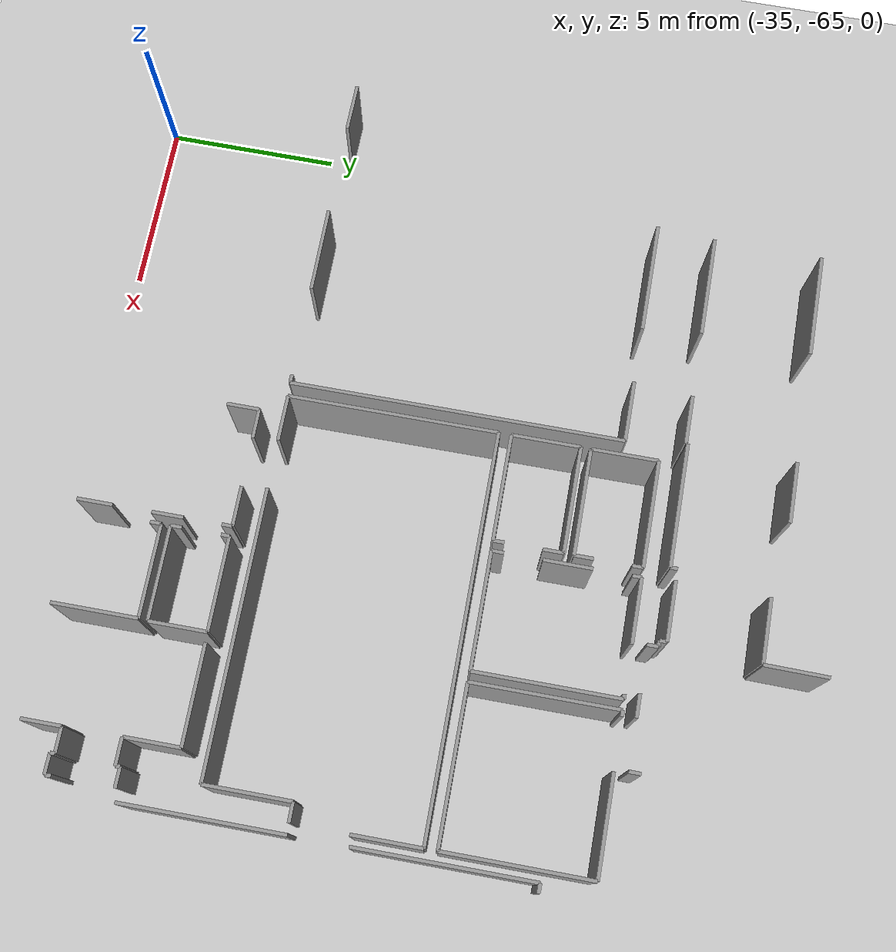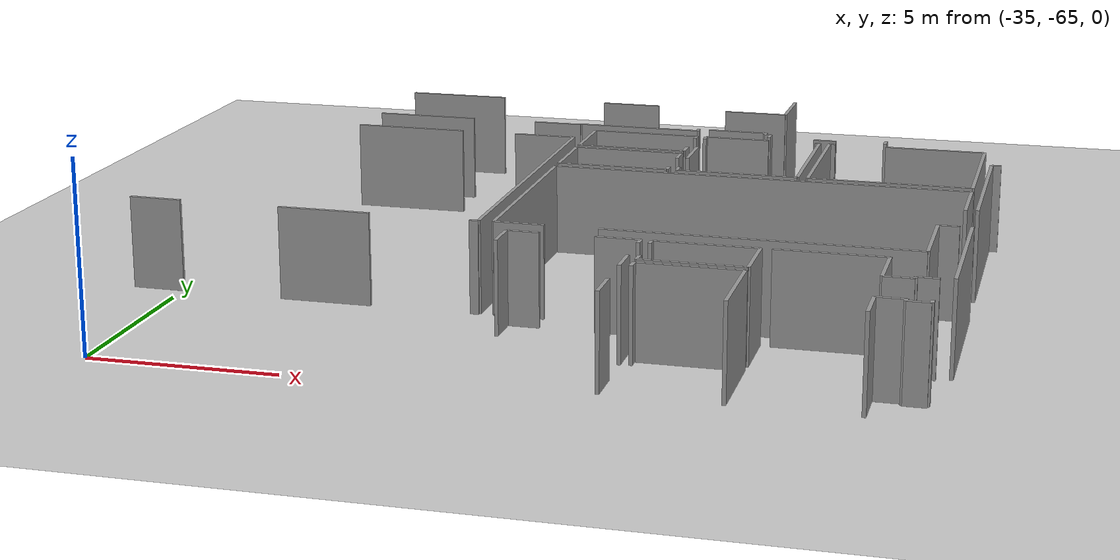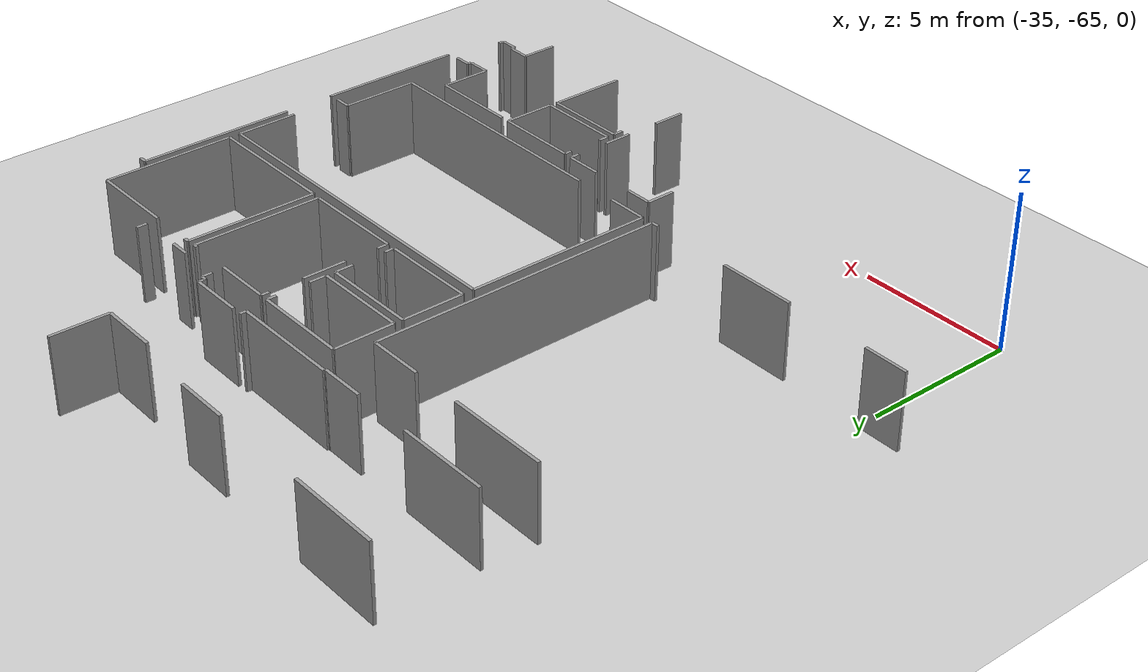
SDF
<sdf version="1.6">
 <world name="default">
  <model name="ground_plane">
   <static>1</static>
   <link name="link">
    <collision name="collision">
     <geometry><plane><normal>0 0 1</normal><size>100 100</size></plane></geometry>
     <surface><friction><ode><mu>100</mu><mu2>50</mu2></ode></friction></surface>
    </collision>
    <visual name="visual">
     <cast_shadows>0</cast_shadows>
     <geometry><plane><normal>0 0 1</normal><size>100 100</size></plane></geometry>
     <material>
      <script><uri>file://media/materials/scripts/gazebo.material</uri><name>Gazebo/Grey</name></script>
     </material>
    </visual>
   </link>
  </model>
  <model name="0510045926_A-40">
   <static>1</static>
   <link name="Wall_1348">
    <collision name="Wall_1348_Collision">
     <geometry><box><size>3.26101165735 0.1 2.5</size></box></geometry>
     <pose>1.63050582867 0 1.25 0 0 0</pose>
    </collision>
    <visual name="Wall_1348_Visual">
     <pose>1.63050582867 0 1.25 0 0 0</pose>
     <geometry><box><size>3.26101165735 0.1 2.5</size></box></geometry>
     <material>
      <script><uri>file://media/materials/scripts/gazebo.material</uri><name>Gazebo/Grey</name></script>
      <ambient>1 1 1 1</ambient>
     </material>
    </visual>
    <pose>100.48548384 -150.809973157 0 0 0 0.0</pose>
   </link>
   <link name="Wall_1349">
    <collision name="Wall_1349_Collision">
     <geometry><box><size>1.78547178312 0.1 2.5</size></box></geometry>
     <pose>0.892735891562 0 1.25 0 0 0</pose>
    </collision>
    <visual name="Wall_1349_Visual">
     <pose>0.892735891562 0 1.25 0 0 0</pose>
     <geometry><box><size>1.78547178312 0.1 2.5</size></box></geometry>
     <material>
      <script><uri>file://media/materials/scripts/gazebo.material</uri><name>Gazebo/Grey</name></script>
      <ambient>1 1 1 1</ambient>
     </material>
    </visual>
    <pose>105.385758616 -150.809973157 0 0 0 0.0</pose>
   </link>
   <link name="Wall_1350">
    <collision name="Wall_1350_Collision">
     <geometry><box><size>9.61804255535 0.1 2.5</size></box></geometry>
     <pose>4.80902127768 0 1.25 0 0 0</pose>
    </collision>
    <visual name="Wall_1350_Visual">
     <pose>4.80902127768 0 1.25 0 0 0</pose>
     <geometry><box><size>9.61804255535 0.1 2.5</size></box></geometry>
     <material>
      <script><uri>file://media/materials/scripts/gazebo.material</uri><name>Gazebo/Grey</name></script>
      <ambient>1 1 1 1</ambient>
     </material>
    </visual>
    <pose>107.171230399 -150.809973157 0 0 0 -1.57079632679</pose>
   </link>
   <link name="Wall_1351">
    <collision name="Wall_1351_Collision">
     <geometry><box><size>0.239112086964 0.1 2.5</size></box></geometry>
     <pose>0.119556043482 0 1.25 0 0 0</pose>
    </collision>
    <visual name="Wall_1351_Visual">
     <pose>0.119556043482 0 1.25 0 0 0</pose>
     <geometry><box><size>0.239112086964 0.1 2.5</size></box></geometry>
     <material>
      <script><uri>file://media/materials/scripts/gazebo.material</uri><name>Gazebo/Grey</name></script>
      <ambient>1 1 1 1</ambient>
     </material>
    </visual>
    <pose>107.171230399 -160.428015712 0 0 0 3.14159265359</pose>
   </link>
   <link name="Wall_1352">
    <collision name="Wall_1352_Collision">
     <geometry><box><size>2.50356954748 0.1 2.5</size></box></geometry>
     <pose>1.25178477374 0 1.25 0 0 0</pose>
    </collision>
    <visual name="Wall_1352_Visual">
     <pose>1.25178477374 0 1.25 0 0 0</pose>
     <geometry><box><size>2.50356954748 0.1 2.5</size></box></geometry>
     <material>
      <script><uri>file://media/materials/scripts/gazebo.material</uri><name>Gazebo/Grey</name></script>
      <ambient>1 1 1 1</ambient>
     </material>
    </visual>
    <pose>104.228527189 -160.428015712 0 0 0 3.14159265359</pose>
   </link>
   <link name="Wall_1353">
    <collision name="Wall_1353_Collision">
     <geometry><box><size>1.43381197946 0.1 2.5</size></box></geometry>
     <pose>0.716905989729 0 1.25 0 0 0</pose>
    </collision>
    <visual name="Wall_1353_Visual">
     <pose>0.716905989729 0 1.25 0 0 0</pose>
     <geometry><box><size>1.43381197946 0.1 2.5</size></box></geometry>
     <material>
      <script><uri>file://media/materials/scripts/gazebo.material</uri><name>Gazebo/Grey</name></script>
      <ambient>1 1 1 1</ambient>
     </material>
    </visual>
    <pose>98.9642537583 -160.428015712 0 0 0 3.12689824389</pose>
   </link>
   <link name="Wall_1459">
    <collision name="Wall_1459_Collision">
     <geometry><box><size>3.02266107385 0.1 2.5</size></box></geometry>
     <pose>1.51133053692 0 1.25 0 0 0</pose>
    </collision>
    <visual name="Wall_1459_Visual">
     <pose>1.51133053692 0 1.25 0 0 0</pose>
     <geometry><box><size>3.02266107385 0.1 2.5</size></box></geometry>
     <material>
      <script><uri>file://media/materials/scripts/gazebo.material</uri><name>Gazebo/Grey</name></script>
      <ambient>1 1 1 1</ambient>
     </material>
    </visual>
    <pose>100.614177925 -145.974933844 0 0 0 0.0</pose>
   </link>
   <link name="Wall_1460">
    <collision name="Wall_1460_Collision">
     <geometry><box><size>1.77531840363 0.1 2.5</size></box></geometry>
     <pose>0.887659201817 0 1.25 0 0 0</pose>
    </collision>
    <visual name="Wall_1460_Visual">
     <pose>0.887659201817 0 1.25 0 0 0</pose>
     <geometry><box><size>1.77531840363 0.1 2.5</size></box></geometry>
     <material>
      <script><uri>file://media/materials/scripts/gazebo.material</uri><name>Gazebo/Grey</name></script>
      <ambient>1 1 1 1</ambient>
     </material>
    </visual>
    <pose>106.926787788 -145.974933844 0 0 0 0.0</pose>
   </link>
   <link name="Wall_1463">
    <collision name="Wall_1463_Collision">
     <geometry><box><size>0.20839811401 0.1 2.5</size></box></geometry>
     <pose>0.104199057005 0 1.25 0 0 0</pose>
    </collision>
    <visual name="Wall_1463_Visual">
     <pose>0.104199057005 0 1.25 0 0 0</pose>
     <geometry><box><size>0.20839811401 0.1 2.5</size></box></geometry>
     <material>
      <script><uri>file://media/materials/scripts/gazebo.material</uri><name>Gazebo/Grey</name></script>
      <ambient>1 1 1 1</ambient>
     </material>
    </visual>
    <pose>110.543929231 -148.854432267 0 0 0 -1.57079632679</pose>
   </link>
   <link name="Wall_1464">
    <collision name="Wall_1464_Collision">
     <geometry><box><size>3.59505784253 0.1 2.5</size></box></geometry>
     <pose>1.79752892127 0 1.25 0 0 0</pose>
    </collision>
    <visual name="Wall_1464_Visual">
     <pose>1.79752892127 0 1.25 0 0 0</pose>
     <geometry><box><size>3.59505784253 0.1 2.5</size></box></geometry>
     <material>
      <script><uri>file://media/materials/scripts/gazebo.material</uri><name>Gazebo/Grey</name></script>
      <ambient>1 1 1 1</ambient>
     </material>
    </visual>
    <pose>110.543929231 -149.062830381 0 0 0 3.14159265359</pose>
   </link>
   <link name="Wall_1465">
    <collision name="Wall_1465_Collision">
     <geometry><box><size>0.055843587189 0.1 2.5</size></box></geometry>
     <pose>0.0279217935945 0 1.25 0 0 0</pose>
    </collision>
    <visual name="Wall_1465_Visual">
     <pose>0.0279217935945 0 1.25 0 0 0</pose>
     <geometry><box><size>0.055843587189 0.1 2.5</size></box></geometry>
     <material>
      <script><uri>file://media/materials/scripts/gazebo.material</uri><name>Gazebo/Grey</name></script>
      <ambient>1 1 1 1</ambient>
     </material>
    </visual>
    <pose>106.948871388 -149.062830381 0 0 0 -1.57079632679</pose>
   </link>
   <link name="Wall_1466">
    <collision name="Wall_1466_Collision">
     <geometry><box><size>1.43543402524 0.1 2.5</size></box></geometry>
     <pose>0.717717012622 0 1.25 0 0 0</pose>
    </collision>
    <visual name="Wall_1466_Visual">
     <pose>0.717717012622 0 1.25 0 0 0</pose>
     <geometry><box><size>1.43543402524 0.1 2.5</size></box></geometry>
     <material>
      <script><uri>file://media/materials/scripts/gazebo.material</uri><name>Gazebo/Grey</name></script>
      <ambient>1 1 1 1</ambient>
     </material>
    </visual>
    <pose>106.948871388 -149.118673969 0 0 0 3.14159265359</pose>
   </link>
   <link name="Wall_1467">
    <collision name="Wall_1467_Collision">
     <geometry><box><size>2.98230139038 0.1 2.5</size></box></geometry>
     <pose>1.49115069519 0 1.25 0 0 0</pose>
    </collision>
    <visual name="Wall_1467_Visual">
     <pose>1.49115069519 0 1.25 0 0 0</pose>
     <geometry><box><size>2.98230139038 0.1 2.5</size></box></geometry>
     <material>
      <script><uri>file://media/materials/scripts/gazebo.material</uri><name>Gazebo/Grey</name></script>
      <ambient>1 1 1 1</ambient>
     </material>
    </visual>
    <pose>103.579980074 -149.118673969 0 0 0 3.14159265359</pose>
   </link>
   <link name="Wall_1506">
    <collision name="Wall_1506_Collision">
     <geometry><box><size>1.9210193993 0.1 2.5</size></box></geometry>
     <pose>0.96050969965 0 1.25 0 0 0</pose>
    </collision>
    <visual name="Wall_1506_Visual">
     <pose>0.96050969965 0 1.25 0 0 0</pose>
     <geometry><box><size>1.9210193993 0.1 2.5</size></box></geometry>
     <material>
      <script><uri>file://media/materials/scripts/gazebo.material</uri><name>Gazebo/Grey</name></script>
      <ambient>1 1 1 1</ambient>
     </material>
    </visual>
    <pose>107.582949937 -151.715146938 0 0 0 1.57079632679</pose>
   </link>
   <link name="Wall_1507">
    <collision name="Wall_1507_Collision">
     <geometry><box><size>3.09754224758 0.1 2.5</size></box></geometry>
     <pose>1.54877112379 0 1.25 0 0 0</pose>
    </collision>
    <visual name="Wall_1507_Visual">
     <pose>1.54877112379 0 1.25 0 0 0</pose>
     <geometry><box><size>3.09754224758 0.1 2.5</size></box></geometry>
     <material>
      <script><uri>file://media/materials/scripts/gazebo.material</uri><name>Gazebo/Grey</name></script>
      <ambient>1 1 1 1</ambient>
     </material>
    </visual>
    <pose>107.582949937 -149.794127539 0 0 0 0.0</pose>
   </link>
   <link name="Wall_1508">
    <collision name="Wall_1508_Collision">
     <geometry><box><size>0.300032363897 0.1 2.5</size></box></geometry>
     <pose>0.150016181949 0 1.25 0 0 0</pose>
    </collision>
    <visual name="Wall_1508_Visual">
     <pose>0.150016181949 0 1.25 0 0 0</pose>
     <geometry><box><size>0.300032363897 0.1 2.5</size></box></geometry>
     <material>
      <script><uri>file://media/materials/scripts/gazebo.material</uri><name>Gazebo/Grey</name></script>
      <ambient>1 1 1 1</ambient>
     </material>
    </visual>
    <pose>110.680492185 -149.794127539 0 0 0 -1.57079632679</pose>
   </link>
   <link name="Wall_1509">
    <collision name="Wall_1509_Collision">
     <geometry><box><size>0.550313168299 0.1 2.5</size></box></geometry>
     <pose>0.275156584149 0 1.25 0 0 0</pose>
    </collision>
    <visual name="Wall_1509_Visual">
     <pose>0.275156584149 0 1.25 0 0 0</pose>
     <geometry><box><size>0.550313168299 0.1 2.5</size></box></geometry>
     <material>
      <script><uri>file://media/materials/scripts/gazebo.material</uri><name>Gazebo/Grey</name></script>
      <ambient>1 1 1 1</ambient>
     </material>
    </visual>
    <pose>110.680492185 -151.16483377 0 0 0 -1.57079632679</pose>
   </link>
   <link name="Wall_1510">
    <collision name="Wall_1510_Collision">
     <geometry><box><size>3.09754224758 0.1 2.5</size></box></geometry>
     <pose>1.54877112379 0 1.25 0 0 0</pose>
    </collision>
    <visual name="Wall_1510_Visual">
     <pose>1.54877112379 0 1.25 0 0 0</pose>
     <geometry><box><size>3.09754224758 0.1 2.5</size></box></geometry>
     <material>
      <script><uri>file://media/materials/scripts/gazebo.material</uri><name>Gazebo/Grey</name></script>
      <ambient>1 1 1 1</ambient>
     </material>
    </visual>
    <pose>110.680492185 -151.715146938 0 0 0 3.14159265359</pose>
   </link>
   <link name="Wall_1511">
    <collision name="Wall_1511_Collision">
     <geometry><box><size>1.9827011797 0.1 2.5</size></box></geometry>
     <pose>0.991350589848 0 1.25 0 0 0</pose>
    </collision>
    <visual name="Wall_1511_Visual">
     <pose>0.991350589848 0 1.25 0 0 0</pose>
     <geometry><box><size>1.9827011797 0.1 2.5</size></box></geometry>
     <material>
      <script><uri>file://media/materials/scripts/gazebo.material</uri><name>Gazebo/Grey</name></script>
      <ambient>1 1 1 1</ambient>
     </material>
    </visual>
    <pose>107.57406573 -153.982650413 0 0 0 1.57079632679</pose>
   </link>
   <link name="Wall_1512">
    <collision name="Wall_1512_Collision">
     <geometry><box><size>3.09551157168 0.1 2.5</size></box></geometry>
     <pose>1.54775578584 0 1.25 0 0 0</pose>
    </collision>
    <visual name="Wall_1512_Visual">
     <pose>1.54775578584 0 1.25 0 0 0</pose>
     <geometry><box><size>3.09551157168 0.1 2.5</size></box></geometry>
     <material>
      <script><uri>file://media/materials/scripts/gazebo.material</uri><name>Gazebo/Grey</name></script>
      <ambient>1 1 1 1</ambient>
     </material>
    </visual>
    <pose>107.57406573 -151.999949233 0 0 0 0.0</pose>
   </link>
   <link name="Wall_1513">
    <collision name="Wall_1513_Collision">
     <geometry><box><size>0.587373003433 0.1 2.5</size></box></geometry>
     <pose>0.293686501717 0 1.25 0 0 0</pose>
    </collision>
    <visual name="Wall_1513_Visual">
     <pose>0.293686501717 0 1.25 0 0 0</pose>
     <geometry><box><size>0.587373003433 0.1 2.5</size></box></geometry>
     <material>
      <script><uri>file://media/materials/scripts/gazebo.material</uri><name>Gazebo/Grey</name></script>
      <ambient>1 1 1 1</ambient>
     </material>
    </visual>
    <pose>110.669577302 -151.999949233 0 0 0 -1.57079632679</pose>
   </link>
   <link name="Wall_1514">
    <collision name="Wall_1514_Collision">
     <geometry><box><size>0.317293109028 0.1 2.5</size></box></geometry>
     <pose>0.158646554514 0 1.25 0 0 0</pose>
    </collision>
    <visual name="Wall_1514_Visual">
     <pose>0.158646554514 0 1.25 0 0 0</pose>
     <geometry><box><size>0.317293109028 0.1 2.5</size></box></geometry>
     <material>
      <script><uri>file://media/materials/scripts/gazebo.material</uri><name>Gazebo/Grey</name></script>
      <ambient>1 1 1 1</ambient>
     </material>
    </visual>
    <pose>110.669577302 -153.657996104 0 0 0 -1.57079632679</pose>
   </link>
   <link name="Wall_1515">
    <collision name="Wall_1515_Collision">
     <geometry><box><size>3.09552032422 0.1 2.5</size></box></geometry>
     <pose>1.54776016211 0 1.25 0 0 0</pose>
    </collision>
    <visual name="Wall_1515_Visual">
     <pose>1.54776016211 0 1.25 0 0 0</pose>
     <geometry><box><size>3.09552032422 0.1 2.5</size></box></geometry>
     <material>
      <script><uri>file://media/materials/scripts/gazebo.material</uri><name>Gazebo/Grey</name></script>
      <ambient>1 1 1 1</ambient>
     </material>
    </visual>
    <pose>110.669577302 -153.975289213 0 0 0 -3.13921463429</pose>
   </link>
   <link name="Wall_1516">
    <collision name="Wall_1516_Collision">
     <geometry><box><size>0.353337606214 0.1 2.5</size></box></geometry>
     <pose>0.176668803107 0 1.25 0 0 0</pose>
    </collision>
    <visual name="Wall_1516_Visual">
     <pose>0.176668803107 0 1.25 0 0 0</pose>
     <geometry><box><size>0.353337606214 0.1 2.5</size></box></geometry>
     <material>
      <script><uri>file://media/materials/scripts/gazebo.material</uri><name>Gazebo/Grey</name></script>
      <ambient>1 1 1 1</ambient>
     </material>
    </visual>
    <pose>110.957679445 -153.970974026 0 0 0 1.57079632679</pose>
   </link>
   <link name="Wall_1517">
    <collision name="Wall_1517_Collision">
     <geometry><box><size>1.39812035562 0.1 2.5</size></box></geometry>
     <pose>0.699060177811 0 1.25 0 0 0</pose>
    </collision>
    <visual name="Wall_1517_Visual">
     <pose>0.699060177811 0 1.25 0 0 0</pose>
     <geometry><box><size>1.39812035562 0.1 2.5</size></box></geometry>
     <material>
      <script><uri>file://media/materials/scripts/gazebo.material</uri><name>Gazebo/Grey</name></script>
      <ambient>1 1 1 1</ambient>
     </material>
    </visual>
    <pose>110.957679445 -152.534524663 0 0 0 1.57079632679</pose>
   </link>
   <link name="Wall_1518">
    <collision name="Wall_1518_Collision">
     <geometry><box><size>0.255611328633 0.1 2.5</size></box></geometry>
     <pose>0.127805664317 0 1.25 0 0 0</pose>
    </collision>
    <visual name="Wall_1518_Visual">
     <pose>0.127805664317 0 1.25 0 0 0</pose>
     <geometry><box><size>0.255611328633 0.1 2.5</size></box></geometry>
     <material>
      <script><uri>file://media/materials/scripts/gazebo.material</uri><name>Gazebo/Grey</name></script>
      <ambient>1 1 1 1</ambient>
     </material>
    </visual>
    <pose>110.957679445 -150.05100804 0 0 0 1.57079632679</pose>
   </link>
   <link name="Wall_1519">
    <collision name="Wall_1519_Collision">
     <geometry><box><size>1.87050633634 0.1 2.5</size></box></geometry>
     <pose>0.935253168172 0 1.25 0 0 0</pose>
    </collision>
    <visual name="Wall_1519_Visual">
     <pose>0.935253168172 0 1.25 0 0 0</pose>
     <geometry><box><size>1.87050633634 0.1 2.5</size></box></geometry>
     <material>
      <script><uri>file://media/materials/scripts/gazebo.material</uri><name>Gazebo/Grey</name></script>
      <ambient>1 1 1 1</ambient>
     </material>
    </visual>
    <pose>110.957679445 -149.795396712 0 0 0 0.0</pose>
   </link>
   <link name="Wall_1520">
    <collision name="Wall_1520_Collision">
     <geometry><box><size>0.131993933356 0.1 2.5</size></box></geometry>
     <pose>0.0659969666779 0 1.25 0 0 0</pose>
    </collision>
    <visual name="Wall_1520_Visual">
     <pose>0.0659969666779 0 1.25 0 0 0</pose>
     <geometry><box><size>0.131993933356 0.1 2.5</size></box></geometry>
     <material>
      <script><uri>file://media/materials/scripts/gazebo.material</uri><name>Gazebo/Grey</name></script>
      <ambient>1 1 1 1</ambient>
     </material>
    </visual>
    <pose>114.19533833 -149.795396712 0 0 0 0.0</pose>
   </link>
   <link name="Wall_1521">
    <collision name="Wall_1521_Collision">
     <geometry><box><size>4.16720077673 0.1 2.5</size></box></geometry>
     <pose>2.08360038837 0 1.25 0 0 0</pose>
    </collision>
    <visual name="Wall_1521_Visual">
     <pose>2.08360038837 0 1.25 0 0 0</pose>
     <geometry><box><size>4.16720077673 0.1 2.5</size></box></geometry>
     <material>
      <script><uri>file://media/materials/scripts/gazebo.material</uri><name>Gazebo/Grey</name></script>
      <ambient>1 1 1 1</ambient>
     </material>
    </visual>
    <pose>114.327332263 -149.795396712 0 0 0 -1.57079632679</pose>
   </link>
   <link name="Wall_1522">
    <collision name="Wall_1522_Collision">
     <geometry><box><size>3.36966322938 0.1 2.5</size></box></geometry>
     <pose>1.68483161469 0 1.25 0 0 0</pose>
    </collision>
    <visual name="Wall_1522_Visual">
     <pose>1.68483161469 0 1.25 0 0 0</pose>
     <geometry><box><size>3.36966322938 0.1 2.5</size></box></geometry>
     <material>
      <script><uri>file://media/materials/scripts/gazebo.material</uri><name>Gazebo/Grey</name></script>
      <ambient>1 1 1 1</ambient>
     </material>
    </visual>
    <pose>114.327332263 -153.962597488 0 0 0 -3.139106783</pose>
   </link>
   <link name="Wall_1523">
    <collision name="Wall_1523_Collision">
     <geometry><box><size>4.20019926007 0.1 2.5</size></box></geometry>
     <pose>2.10009963004 0 1.25 0 0 0</pose>
    </collision>
    <visual name="Wall_1523_Visual">
     <pose>2.10009963004 0 1.25 0 0 0</pose>
     <geometry><box><size>4.20019926007 0.1 2.5</size></box></geometry>
     <material>
      <script><uri>file://media/materials/scripts/gazebo.material</uri><name>Gazebo/Grey</name></script>
      <ambient>1 1 1 1</ambient>
     </material>
    </visual>
    <pose>114.617972751 -153.980619737 0 0 0 1.57079632679</pose>
   </link>
   <link name="Wall_1524">
    <collision name="Wall_1524_Collision">
     <geometry><box><size>0.172353616824 0.1 2.5</size></box></geometry>
     <pose>0.0861768084121 0 1.25 0 0 0</pose>
    </collision>
    <visual name="Wall_1524_Visual">
     <pose>0.0861768084121 0 1.25 0 0 0</pose>
     <geometry><box><size>0.172353616824 0.1 2.5</size></box></geometry>
     <material>
      <script><uri>file://media/materials/scripts/gazebo.material</uri><name>Gazebo/Grey</name></script>
      <ambient>1 1 1 1</ambient>
     </material>
    </visual>
    <pose>114.617972751 -149.780420477 0 0 0 0.0</pose>
   </link>
   <link name="Wall_1525">
    <collision name="Wall_1525_Collision">
     <geometry><box><size>2.83126987048 0.1 2.5</size></box></geometry>
     <pose>1.41563493524 0 1.25 0 0 0</pose>
    </collision>
    <visual name="Wall_1525_Visual">
     <pose>1.41563493524 0 1.25 0 0 0</pose>
     <geometry><box><size>2.83126987048 0.1 2.5</size></box></geometry>
     <material>
      <script><uri>file://media/materials/scripts/gazebo.material</uri><name>Gazebo/Grey</name></script>
      <ambient>1 1 1 1</ambient>
     </material>
    </visual>
    <pose>116.252920683 -149.780420477 0 0 0 0.0</pose>
   </link>
   <link name="Wall_1526">
    <collision name="Wall_1526_Collision">
     <geometry><box><size>4.19893008764 0.1 2.5</size></box></geometry>
     <pose>2.09946504382 0 1.25 0 0 0</pose>
    </collision>
    <visual name="Wall_1526_Visual">
     <pose>2.09946504382 0 1.25 0 0 0</pose>
     <geometry><box><size>4.19893008764 0.1 2.5</size></box></geometry>
     <material>
      <script><uri>file://media/materials/scripts/gazebo.material</uri><name>Gazebo/Grey</name></script>
      <ambient>1 1 1 1</ambient>
     </material>
    </visual>
    <pose>119.084190554 -149.780420477 0 0 0 -1.57079632679</pose>
   </link>
   <link name="Wall_1527">
    <collision name="Wall_1527_Collision">
     <geometry><box><size>4.46621798301 0.1 2.5</size></box></geometry>
     <pose>2.23310899151 0 1.25 0 0 0</pose>
    </collision>
    <visual name="Wall_1527_Visual">
     <pose>2.23310899151 0 1.25 0 0 0</pose>
     <geometry><box><size>4.46621798301 0.1 2.5</size></box></geometry>
     <material>
      <script><uri>file://media/materials/scripts/gazebo.material</uri><name>Gazebo/Grey</name></script>
      <ambient>1 1 1 1</ambient>
     </material>
    </visual>
    <pose>119.084190554 -153.979350564 0 0 0 -3.14130848196</pose>
   </link>
   <link name="Wall_1542">
    <collision name="Wall_1542_Collision">
     <geometry><box><size>0.339376709417 0.1 2.5</size></box></geometry>
     <pose>0.169688354708 0 1.25 0 0 0</pose>
    </collision>
    <visual name="Wall_1542_Visual">
     <pose>0.169688354708 0 1.25 0 0 0</pose>
     <geometry><box><size>0.339376709417 0.1 2.5</size></box></geometry>
     <material>
      <script><uri>file://media/materials/scripts/gazebo.material</uri><name>Gazebo/Grey</name></script>
      <ambient>1 1 1 1</ambient>
     </material>
    </visual>
    <pose>116.184385372 -149.052677002 0 0 0 -1.57079632679</pose>
   </link>
   <link name="Wall_1543">
    <collision name="Wall_1543_Collision">
     <geometry><box><size>0.660223501266 0.1 2.5</size></box></geometry>
     <pose>0.330111750633 0 1.25 0 0 0</pose>
    </collision>
    <visual name="Wall_1543_Visual">
     <pose>0.330111750633 0 1.25 0 0 0</pose>
     <geometry><box><size>0.660223501266 0.1 2.5</size></box></geometry>
     <material>
      <script><uri>file://media/materials/scripts/gazebo.material</uri><name>Gazebo/Grey</name></script>
      <ambient>1 1 1 1</ambient>
     </material>
    </visual>
    <pose>114.760627733 -149.392053711 0 0 0 3.14159265359</pose>
   </link>
   <link name="Wall_1544">
    <collision name="Wall_1544_Collision">
     <geometry><box><size>0.314754764156 0.1 2.5</size></box></geometry>
     <pose>0.157377382078 0 1.25 0 0 0</pose>
    </collision>
    <visual name="Wall_1544_Visual">
     <pose>0.157377382078 0 1.25 0 0 0</pose>
     <geometry><box><size>0.314754764156 0.1 2.5</size></box></geometry>
     <material>
      <script><uri>file://media/materials/scripts/gazebo.material</uri><name>Gazebo/Grey</name></script>
      <ambient>1 1 1 1</ambient>
     </material>
    </visual>
    <pose>112.76472716 -149.392053711 0 0 0 1.57079632679</pose>
   </link>
   <link name="Wall_1545">
    <collision name="Wall_1545_Collision">
     <geometry><box><size>0.17184594785 0.1 2.5</size></box></geometry>
     <pose>0.0859229739248 0 1.25 0 0 0</pose>
    </collision>
    <visual name="Wall_1545_Visual">
     <pose>0.0859229739248 0 1.25 0 0 0</pose>
     <geometry><box><size>0.17184594785 0.1 2.5</size></box></geometry>
     <material>
      <script><uri>file://media/materials/scripts/gazebo.material</uri><name>Gazebo/Grey</name></script>
      <ambient>1 1 1 1</ambient>
     </material>
    </visual>
    <pose>112.76472716 -149.077298947 0 0 0 3.14159265359</pose>
   </link>
   <link name="Wall_1546">
    <collision name="Wall_1546_Collision">
     <geometry><box><size>0.208651948497 0.1 2.5</size></box></geometry>
     <pose>0.104325974248 0 1.25 0 0 0</pose>
    </collision>
    <visual name="Wall_1546_Visual">
     <pose>0.104325974248 0 1.25 0 0 0</pose>
     <geometry><box><size>0.208651948497 0.1 2.5</size></box></geometry>
     <material>
      <script><uri>file://media/materials/scripts/gazebo.material</uri><name>Gazebo/Grey</name></script>
      <ambient>1 1 1 1</ambient>
     </material>
    </visual>
    <pose>112.592881212 -149.077298947 0 0 0 1.57079632679</pose>
   </link>
   <link name="Wall_1547">
    <collision name="Wall_1547_Collision">
     <geometry><box><size>1.72226699581 0.1 2.5</size></box></geometry>
     <pose>0.861133497903 0 1.25 0 0 0</pose>
    </collision>
    <visual name="Wall_1547_Visual">
     <pose>0.861133497903 0 1.25 0 0 0</pose>
     <geometry><box><size>1.72226699581 0.1 2.5</size></box></geometry>
     <material>
      <script><uri>file://media/materials/scripts/gazebo.material</uri><name>Gazebo/Grey</name></script>
      <ambient>1 1 1 1</ambient>
     </material>
    </visual>
    <pose>112.592881212 -148.868646999 0 0 0 3.14159265359</pose>
   </link>
   <link name="Wall_1548">
    <collision name="Wall_1548_Collision">
     <geometry><box><size>1.87228317775 0.1 2.5</size></box></geometry>
     <pose>0.936141588877 0 1.25 0 0 0</pose>
    </collision>
    <visual name="Wall_1548_Visual">
     <pose>0.936141588877 0 1.25 0 0 0</pose>
     <geometry><box><size>1.87228317775 0.1 2.5</size></box></geometry>
     <material>
      <script><uri>file://media/materials/scripts/gazebo.material</uri><name>Gazebo/Grey</name></script>
      <ambient>1 1 1 1</ambient>
     </material>
    </visual>
    <pose>110.870614216 -146.245013739 0 0 0 0.0</pose>
   </link>
   <link name="Wall_1549">
    <collision name="Wall_1549_Collision">
     <geometry><box><size>1.83153410168 0.1 2.5</size></box></geometry>
     <pose>0.915767050839 0 1.25 0 0 0</pose>
    </collision>
    <visual name="Wall_1549_Visual">
     <pose>0.915767050839 0 1.25 0 0 0</pose>
     <geometry><box><size>1.83153410168 0.1 2.5</size></box></geometry>
     <material>
      <script><uri>file://media/materials/scripts/gazebo.material</uri><name>Gazebo/Grey</name></script>
      <ambient>1 1 1 1</ambient>
     </material>
    </visual>
    <pose>112.742897394 -146.245013739 0 0 0 1.55943160473</pose>
   </link>
   <link name="Wall_1550">
    <collision name="Wall_1550_Collision">
     <geometry><box><size>2.70435262687 0.1 2.5</size></box></geometry>
     <pose>1.35217631343 0 1.25 0 0 0</pose>
    </collision>
    <visual name="Wall_1550_Visual">
     <pose>1.35217631343 0 1.25 0 0 0</pose>
     <geometry><box><size>2.70435262687 0.1 2.5</size></box></geometry>
     <material>
      <script><uri>file://media/materials/scripts/gazebo.material</uri><name>Gazebo/Grey</name></script>
      <ambient>1 1 1 1</ambient>
     </material>
    </visual>
    <pose>111.857522702 -161.142305959 0 0 0 0.0</pose>
   </link>
   <link name="Wall_1551">
    <collision name="Wall_1551_Collision">
     <geometry><box><size>1.66997709144 0.1 2.5</size></box></geometry>
     <pose>0.834988545719 0 1.25 0 0 0</pose>
    </collision>
    <visual name="Wall_1551_Visual">
     <pose>0.834988545719 0 1.25 0 0 0</pose>
     <geometry><box><size>1.66997709144 0.1 2.5</size></box></geometry>
     <material>
      <script><uri>file://media/materials/scripts/gazebo.material</uri><name>Gazebo/Grey</name></script>
      <ambient>1 1 1 1</ambient>
     </material>
    </visual>
    <pose>114.561875329 -161.142305959 0 0 0 -1.57079632679</pose>
   </link>
   <link name="Wall_1552">
    <collision name="Wall_1552_Collision">
     <geometry><box><size>2.7096831511 0.1 2.5</size></box></geometry>
     <pose>1.35484157555 0 1.25 0 0 0</pose>
    </collision>
    <visual name="Wall_1552_Visual">
     <pose>1.35484157555 0 1.25 0 0 0</pose>
     <geometry><box><size>2.7096831511 0.1 2.5</size></box></geometry>
     <material>
      <script><uri>file://media/materials/scripts/gazebo.material</uri><name>Gazebo/Grey</name></script>
      <ambient>1 1 1 1</ambient>
     </material>
    </visual>
    <pose>114.561875329 -162.812283051 0 0 0 3.14159265359</pose>
   </link>
   <link name="Wall_1553">
    <collision name="Wall_1553_Collision">
     <geometry><box><size>0.322877467747 0.1 2.5</size></box></geometry>
     <pose>0.161438733874 0 1.25 0 0 0</pose>
    </collision>
    <visual name="Wall_1553_Visual">
     <pose>0.161438733874 0 1.25 0 0 0</pose>
     <geometry><box><size>0.322877467747 0.1 2.5</size></box></geometry>
     <material>
      <script><uri>file://media/materials/scripts/gazebo.material</uri><name>Gazebo/Grey</name></script>
      <ambient>1 1 1 1</ambient>
     </material>
    </visual>
    <pose>111.852192178 -162.812283051 0 0 0 1.57079632679</pose>
   </link>
   <link name="Wall_1554">
    <collision name="Wall_1554_Collision">
     <geometry><box><size>0.236887558805 0.1 2.5</size></box></geometry>
     <pose>0.118443779403 0 1.25 0 0 0</pose>
    </collision>
    <visual name="Wall_1554_Visual">
     <pose>0.118443779403 0 1.25 0 0 0</pose>
     <geometry><box><size>0.236887558805 0.1 2.5</size></box></geometry>
     <material>
      <script><uri>file://media/materials/scripts/gazebo.material</uri><name>Gazebo/Grey</name></script>
      <ambient>1 1 1 1</ambient>
     </material>
    </visual>
    <pose>111.852192178 -161.379133536 0 0 0 1.548292088</pose>
   </link>
   <link name="Wall_1556">
    <collision name="Wall_1556_Collision">
     <geometry><box><size>0.319323784926 0.1 2.5</size></box></geometry>
     <pose>0.159661892463 0 1.25 0 0 0</pose>
    </collision>
    <visual name="Wall_1556_Visual">
     <pose>0.159661892463 0 1.25 0 0 0</pose>
     <geometry><box><size>0.319323784926 0.1 2.5</size></box></geometry>
     <material>
      <script><uri>file://media/materials/scripts/gazebo.material</uri><name>Gazebo/Grey</name></script>
      <ambient>1 1 1 1</ambient>
     </material>
    </visual>
    <pose>111.850415337 -163.391533351 0 0 0 1.57079632679</pose>
   </link>
   <link name="Wall_1557">
    <collision name="Wall_1557_Collision">
     <geometry><box><size>2.68683804725 0.1 2.5</size></box></geometry>
     <pose>1.34341902363 0 1.25 0 0 0</pose>
    </collision>
    <visual name="Wall_1557_Visual">
     <pose>1.34341902363 0 1.25 0 0 0</pose>
     <geometry><box><size>2.68683804725 0.1 2.5</size></box></geometry>
     <material>
      <script><uri>file://media/materials/scripts/gazebo.material</uri><name>Gazebo/Grey</name></script>
      <ambient>1 1 1 1</ambient>
     </material>
    </visual>
    <pose>111.850415337 -163.072209566 0 0 0 0.0</pose>
   </link>
   <link name="Wall_1558">
    <collision name="Wall_1558_Collision">
     <geometry><box><size>2.46828655375 0.1 2.5</size></box></geometry>
     <pose>1.23414327688 0 1.25 0 0 0</pose>
    </collision>
    <visual name="Wall_1558_Visual">
     <pose>1.23414327688 0 1.25 0 0 0</pose>
     <geometry><box><size>2.46828655375 0.1 2.5</size></box></geometry>
     <material>
      <script><uri>file://media/materials/scripts/gazebo.material</uri><name>Gazebo/Grey</name></script>
      <ambient>1 1 1 1</ambient>
     </material>
    </visual>
    <pose>114.537253384 -163.072209566 0 0 0 -1.57079632679</pose>
   </link>
   <link name="Wall_1561">
    <collision name="Wall_1561_Collision">
     <geometry><box><size>0.938172264775 0.1 2.5</size></box></geometry>
     <pose>0.469086132387 0 1.25 0 0 0</pose>
    </collision>
    <visual name="Wall_1561_Visual">
     <pose>0.469086132387 0 1.25 0 0 0</pose>
     <geometry><box><size>0.938172264775 0.1 2.5</size></box></geometry>
     <material>
      <script><uri>file://media/materials/scripts/gazebo.material</uri><name>Gazebo/Grey</name></script>
      <ambient>1 1 1 1</ambient>
     </material>
    </visual>
    <pose>108.110671836 -162.061440638 0 0 0 1.57079632679</pose>
   </link>
   <link name="Wall_1562">
    <collision name="Wall_1562_Collision">
     <geometry><box><size>0.862275753095 0.1 2.5</size></box></geometry>
     <pose>0.431137876548 0 1.25 0 0 0</pose>
    </collision>
    <visual name="Wall_1562_Visual">
     <pose>0.431137876548 0 1.25 0 0 0</pose>
     <geometry><box><size>0.862275753095 0.1 2.5</size></box></geometry>
     <material>
      <script><uri>file://media/materials/scripts/gazebo.material</uri><name>Gazebo/Grey</name></script>
      <ambient>1 1 1 1</ambient>
     </material>
    </visual>
    <pose>108.110671836 -161.123268373 0 0 0 0.0</pose>
   </link>
   <link name="Wall_1563">
    <collision name="Wall_1563_Collision">
     <geometry><box><size>1.16636946879 0.1 2.5</size></box></geometry>
     <pose>0.583184734394 0 1.25 0 0 0</pose>
    </collision>
    <visual name="Wall_1563_Visual">
     <pose>0.583184734394 0 1.25 0 0 0</pose>
     <geometry><box><size>1.16636946879 0.1 2.5</size></box></geometry>
     <material>
      <script><uri>file://media/materials/scripts/gazebo.material</uri><name>Gazebo/Grey</name></script>
      <ambient>1 1 1 1</ambient>
     </material>
    </visual>
    <pose>110.401020415 -161.123268373 0 0 0 0.0</pose>
   </link>
   <link name="Wall_1564">
    <collision name="Wall_1564_Collision">
     <geometry><box><size>0.305870557103 0.1 2.5</size></box></geometry>
     <pose>0.152935278552 0 1.25 0 0 0</pose>
    </collision>
    <visual name="Wall_1564_Visual">
     <pose>0.152935278552 0 1.25 0 0 0</pose>
     <geometry><box><size>0.305870557103 0.1 2.5</size></box></geometry>
     <material>
      <script><uri>file://media/materials/scripts/gazebo.material</uri><name>Gazebo/Grey</name></script>
      <ambient>1 1 1 1</ambient>
     </material>
    </visual>
    <pose>111.567389883 -161.123268373 0 0 0 -1.57079632679</pose>
   </link>
   <link name="Wall_1565">
    <collision name="Wall_1565_Collision">
     <geometry><box><size>0.907458291821 0.1 2.5</size></box></geometry>
     <pose>0.45372914591 0 1.25 0 0 0</pose>
    </collision>
    <visual name="Wall_1565_Visual">
     <pose>0.45372914591 0 1.25 0 0 0</pose>
     <geometry><box><size>0.907458291821 0.1 2.5</size></box></geometry>
     <material>
      <script><uri>file://media/materials/scripts/gazebo.material</uri><name>Gazebo/Grey</name></script>
      <ambient>1 1 1 1</ambient>
     </material>
    </visual>
    <pose>111.567389883 -162.512758356 0 0 0 -1.57079632679</pose>
   </link>
   <link name="Wall_1566">
    <collision name="Wall_1566_Collision">
     <geometry><box><size>1.02168381107 0.1 2.5</size></box></geometry>
     <pose>0.510841905535 0 1.25 0 0 0</pose>
    </collision>
    <visual name="Wall_1566_Visual">
     <pose>0.510841905535 0 1.25 0 0 0</pose>
     <geometry><box><size>1.02168381107 0.1 2.5</size></box></geometry>
     <material>
      <script><uri>file://media/materials/scripts/gazebo.material</uri><name>Gazebo/Grey</name></script>
      <ambient>1 1 1 1</ambient>
     </material>
    </visual>
    <pose>111.567389883 -164.528711853 0 0 0 -1.57079632679</pose>
   </link>
   <link name="Wall_1568">
    <collision name="Wall_1568_Collision">
     <geometry><box><size>6.05674469962 0.1 2.5</size></box></geometry>
     <pose>3.02837234981 0 1.25 0 0 0</pose>
    </collision>
    <visual name="Wall_1568_Visual">
     <pose>3.02837234981 0 1.25 0 0 0</pose>
     <geometry><box><size>6.05674469962 0.1 2.5</size></box></geometry>
     <material>
      <script><uri>file://media/materials/scripts/gazebo.material</uri><name>Gazebo/Grey</name></script>
      <ambient>1 1 1 1</ambient>
     </material>
    </visual>
    <pose>107.568735206 -160.402378429 0 0 0 1.57079632679</pose>
   </link>
   <link name="Wall_1569">
    <collision name="Wall_1569_Collision">
     <geometry><box><size>11.5174860232 0.1 2.5</size></box></geometry>
     <pose>5.75874301162 0 1.25 0 0 0</pose>
    </collision>
    <visual name="Wall_1569_Visual">
     <pose>5.75874301162 0 1.25 0 0 0</pose>
     <geometry><box><size>11.5174860232 0.1 2.5</size></box></geometry>
     <material>
      <script><uri>file://media/materials/scripts/gazebo.material</uri><name>Gazebo/Grey</name></script>
      <ambient>1 1 1 1</ambient>
     </material>
    </visual>
    <pose>107.568735206 -154.34563373 0 0 0 0.0</pose>
   </link>
   <link name="Wall_1570">
    <collision name="Wall_1570_Collision">
     <geometry><box><size>1.97026328982 0.1 2.5</size></box></geometry>
     <pose>0.985131644911 0 1.25 0 0 0</pose>
    </collision>
    <visual name="Wall_1570_Visual">
     <pose>0.985131644911 0 1.25 0 0 0</pose>
     <geometry><box><size>1.97026328982 0.1 2.5</size></box></geometry>
     <material>
      <script><uri>file://media/materials/scripts/gazebo.material</uri><name>Gazebo/Grey</name></script>
      <ambient>1 1 1 1</ambient>
     </material>
    </visual>
    <pose>119.086221229 -154.34563373 0 0 0 -1.57079632679</pose>
   </link>
   <link name="Wall_1571">
    <collision name="Wall_1571_Collision">
     <geometry><box><size>0.555897527018 0.1 2.5</size></box></geometry>
     <pose>0.277948763509 0 1.25 0 0 0</pose>
    </collision>
    <visual name="Wall_1571_Visual">
     <pose>0.277948763509 0 1.25 0 0 0</pose>
     <geometry><box><size>0.555897527018 0.1 2.5</size></box></geometry>
     <material>
      <script><uri>file://media/materials/scripts/gazebo.material</uri><name>Gazebo/Grey</name></script>
      <ambient>1 1 1 1</ambient>
     </material>
    </visual>
    <pose>119.086221229 -157.934091875 0 0 0 3.14159265359</pose>
   </link>
   <link name="Wall_1572">
    <collision name="Wall_1572_Collision">
     <geometry><box><size>2.47514008491 0.1 2.5</size></box></geometry>
     <pose>1.23757004245 0 1.25 0 0 0</pose>
    </collision>
    <visual name="Wall_1572_Visual">
     <pose>1.23757004245 0 1.25 0 0 0</pose>
     <geometry><box><size>2.47514008491 0.1 2.5</size></box></geometry>
     <material>
      <script><uri>file://media/materials/scripts/gazebo.material</uri><name>Gazebo/Grey</name></script>
      <ambient>1 1 1 1</ambient>
     </material>
    </visual>
    <pose>118.530323702 -157.934091875 0 0 0 -1.57079632679</pose>
   </link>
   <link name="Wall_1573">
    <collision name="Wall_1573_Collision">
     <geometry><box><size>8.20951498575 0.1 2.5</size></box></geometry>
     <pose>4.10475749288 0 1.25 0 0 0</pose>
    </collision>
    <visual name="Wall_1573_Visual">
     <pose>4.10475749288 0 1.25 0 0 0</pose>
     <geometry><box><size>8.20951498575 0.1 2.5</size></box></geometry>
     <material>
      <script><uri>file://media/materials/scripts/gazebo.material</uri><name>Gazebo/Grey</name></script>
      <ambient>1 1 1 1</ambient>
     </material>
    </visual>
    <pose>118.530323702 -160.40923196 0 0 0 3.14159265359</pose>
   </link>
   <link name="Wall_1574">
    <collision name="Wall_1574_Collision">
     <geometry><box><size>1.33315634343 0.1 2.5</size></box></geometry>
     <pose>0.666578171716 0 1.25 0 0 0</pose>
    </collision>
    <visual name="Wall_1574_Visual">
     <pose>0.666578171716 0 1.25 0 0 0</pose>
     <geometry><box><size>1.33315634343 0.1 2.5</size></box></geometry>
     <material>
      <script><uri>file://media/materials/scripts/gazebo.material</uri><name>Gazebo/Grey</name></script>
      <ambient>1 1 1 1</ambient>
     </material>
    </visual>
    <pose>108.901873933 -160.40923196 0 0 0 3.13645180017</pose>
   </link>
   <link name="Wall_1576">
    <collision name="Wall_1576_Collision">
     <geometry><box><size>2.85386113984 0.1 2.5</size></box></geometry>
     <pose>1.42693056992 0 1.25 0 0 0</pose>
    </collision>
    <visual name="Wall_1576_Visual">
     <pose>1.42693056992 0 1.25 0 0 0</pose>
     <geometry><box><size>2.85386113984 0.1 2.5</size></box></geometry>
     <material>
      <script><uri>file://media/materials/scripts/gazebo.material</uri><name>Gazebo/Grey</name></script>
      <ambient>1 1 1 1</ambient>
     </material>
    </visual>
    <pose>114.8487083 -161.132660249 0 0 0 0.0</pose>
   </link>
   <link name="Wall_1577">
    <collision name="Wall_1577_Collision">
     <geometry><box><size>1.60854914553 0.1 2.5</size></box></geometry>
     <pose>0.804274572765 0 1.25 0 0 0</pose>
    </collision>
    <visual name="Wall_1577_Visual">
     <pose>0.804274572765 0 1.25 0 0 0</pose>
     <geometry><box><size>1.60854914553 0.1 2.5</size></box></geometry>
     <material>
      <script><uri>file://media/materials/scripts/gazebo.material</uri><name>Gazebo/Grey</name></script>
      <ambient>1 1 1 1</ambient>
     </material>
    </visual>
    <pose>117.70256944 -161.132660249 0 0 0 -1.57079632679</pose>
   </link>
   <link name="Wall_1578">
    <collision name="Wall_1578_Collision">
     <geometry><box><size>0.769118496285 0.1 2.5</size></box></geometry>
     <pose>0.384559248142 0 1.25 0 0 0</pose>
    </collision>
    <visual name="Wall_1578_Visual">
     <pose>0.384559248142 0 1.25 0 0 0</pose>
     <geometry><box><size>0.769118496285 0.1 2.5</size></box></geometry>
     <material>
      <script><uri>file://media/materials/scripts/gazebo.material</uri><name>Gazebo/Grey</name></script>
      <ambient>1 1 1 1</ambient>
     </material>
    </visual>
    <pose>117.70256944 -162.741209394 0 0 0 0.0</pose>
   </link>
   <link name="Wall_1579">
    <collision name="Wall_1579_Collision">
     <geometry><box><size>0.130978595407 0.1 2.5</size></box></geometry>
     <pose>0.0654892977034 0 1.25 0 0 0</pose>
    </collision>
    <visual name="Wall_1579_Visual">
     <pose>0.0654892977034 0 1.25 0 0 0</pose>
     <geometry><box><size>0.130978595407 0.1 2.5</size></box></geometry>
     <material>
      <script><uri>file://media/materials/scripts/gazebo.material</uri><name>Gazebo/Grey</name></script>
      <ambient>1 1 1 1</ambient>
     </material>
    </visual>
    <pose>118.471687936 -162.741209394 0 0 0 1.57079632679</pose>
   </link>
   <link name="Wall_1580">
    <collision name="Wall_1580_Collision">
     <geometry><box><size>0.561735720224 0.1 2.5</size></box></geometry>
     <pose>0.280867860112 0 1.25 0 0 0</pose>
    </collision>
    <visual name="Wall_1580_Visual">
     <pose>0.280867860112 0 1.25 0 0 0</pose>
     <geometry><box><size>0.561735720224 0.1 2.5</size></box></geometry>
     <material>
      <script><uri>file://media/materials/scripts/gazebo.material</uri><name>Gazebo/Grey</name></script>
      <ambient>1 1 1 1</ambient>
     </material>
    </visual>
    <pose>118.471687936 -162.610230799 0 0 0 0.0</pose>
   </link>
   <link name="Wall_1581">
    <collision name="Wall_1581_Collision">
     <geometry><box><size>0.180222485928 0.1 2.5</size></box></geometry>
     <pose>0.090111242964 0 1.25 0 0 0</pose>
    </collision>
    <visual name="Wall_1581_Visual">
     <pose>0.090111242964 0 1.25 0 0 0</pose>
     <geometry><box><size>0.180222485928 0.1 2.5</size></box></geometry>
     <material>
      <script><uri>file://media/materials/scripts/gazebo.material</uri><name>Gazebo/Grey</name></script>
      <ambient>1 1 1 1</ambient>
     </material>
    </visual>
    <pose>119.033423656 -164.341635836 0 0 0 -1.57079632679</pose>
   </link>
   <link name="Wall_1582">
    <collision name="Wall_1582_Collision">
     <geometry><box><size>0.582550148176 0.1 2.5</size></box></geometry>
     <pose>0.291275074088 0 1.25 0 0 0</pose>
    </collision>
    <visual name="Wall_1582_Visual">
     <pose>0.291275074088 0 1.25 0 0 0</pose>
     <geometry><box><size>0.582550148176 0.1 2.5</size></box></geometry>
     <material>
      <script><uri>file://media/materials/scripts/gazebo.material</uri><name>Gazebo/Grey</name></script>
      <ambient>1 1 1 1</ambient>
     </material>
    </visual>
    <pose>119.033423656 -164.521858322 0 0 0 3.14159265359</pose>
   </link>
   <link name="Wall_1583">
    <collision name="Wall_1583_Collision">
     <geometry><box><size>0.129709422971 0.1 2.5</size></box></geometry>
     <pose>0.0648547114854 0 1.25 0 0 0</pose>
    </collision>
    <visual name="Wall_1583_Visual">
     <pose>0.0648547114854 0 1.25 0 0 0</pose>
     <geometry><box><size>0.129709422971 0.1 2.5</size></box></geometry>
     <material>
      <script><uri>file://media/materials/scripts/gazebo.material</uri><name>Gazebo/Grey</name></script>
      <ambient>1 1 1 1</ambient>
     </material>
    </visual>
    <pose>118.450873508 -164.521858322 0 0 0 1.57079632679</pose>
   </link>
   <link name="Wall_1584">
    <collision name="Wall_1584_Collision">
     <geometry><box><size>0.728758812816 0.1 2.5</size></box></geometry>
     <pose>0.364379406408 0 1.25 0 0 0</pose>
    </collision>
    <visual name="Wall_1584_Visual">
     <pose>0.364379406408 0 1.25 0 0 0</pose>
     <geometry><box><size>0.728758812816 0.1 2.5</size></box></geometry>
     <material>
      <script><uri>file://media/materials/scripts/gazebo.material</uri><name>Gazebo/Grey</name></script>
      <ambient>1 1 1 1</ambient>
     </material>
    </visual>
    <pose>118.450873508 -164.392148899 0 0 0 3.14159265359</pose>
   </link>
   <link name="Wall_1585">
    <collision name="Wall_1585_Collision">
     <geometry><box><size>1.14174752353 0.1 2.5</size></box></geometry>
     <pose>0.570873761764 0 1.25 0 0 0</pose>
    </collision>
    <visual name="Wall_1585_Visual">
     <pose>0.570873761764 0 1.25 0 0 0</pose>
     <geometry><box><size>1.14174752353 0.1 2.5</size></box></geometry>
     <material>
      <script><uri>file://media/materials/scripts/gazebo.material</uri><name>Gazebo/Grey</name></script>
      <ambient>1 1 1 1</ambient>
     </material>
    </visual>
    <pose>117.722114695 -164.392148899 0 0 0 -1.57079632679</pose>
   </link>
   <link name="Wall_1711">
    <collision name="Wall_1711_Collision">
     <geometry><box><size>4.62892570899 0.1 2.5</size></box></geometry>
     <pose>2.3144628545 0 1.25 0 0 0</pose>
    </collision>
    <visual name="Wall_1711_Visual">
     <pose>2.3144628545 0 1.25 0 0 0</pose>
     <geometry><box><size>4.62892570899 0.1 2.5</size></box></geometry>
     <material>
      <script><uri>file://media/materials/scripts/gazebo.material</uri><name>Gazebo/Grey</name></script>
      <ambient>1 1 1 1</ambient>
     </material>
    </visual>
    <pose>119.391076449 -162.532303611 0 0 0 1.57079632679</pose>
   </link>
   <link name="Wall_1712">
    <collision name="Wall_1712_Collision">
     <geometry><box><size>5.0320148747 0.1 2.5</size></box></geometry>
     <pose>2.51600743735 0 1.25 0 0 0</pose>
    </collision>
    <visual name="Wall_1712_Visual">
     <pose>2.51600743735 0 1.25 0 0 0</pose>
     <geometry><box><size>5.0320148747 0.1 2.5</size></box></geometry>
     <material>
      <script><uri>file://media/materials/scripts/gazebo.material</uri><name>Gazebo/Grey</name></script>
      <ambient>1 1 1 1</ambient>
     </material>
    </visual>
    <pose>119.391076449 -156.266906963 0 0 0 1.57079632679</pose>
   </link>
   <link name="Wall_1713">
    <collision name="Wall_1713_Collision">
     <geometry><box><size>0.266526211584 0.1 2.5</size></box></geometry>
     <pose>0.133263105792 0 1.25 0 0 0</pose>
    </collision>
    <visual name="Wall_1713_Visual">
     <pose>0.133263105792 0 1.25 0 0 0</pose>
     <geometry><box><size>0.266526211584 0.1 2.5</size></box></geometry>
     <material>
      <script><uri>file://media/materials/scripts/gazebo.material</uri><name>Gazebo/Grey</name></script>
      <ambient>1 1 1 1</ambient>
     </material>
    </visual>
    <pose>119.391076449 -151.234892089 0 0 0 0.0</pose>
   </link>
   <pose>-133.95 101.113233661 0 0 0 0</pose>
  </model>
 </world>
</sdf>
